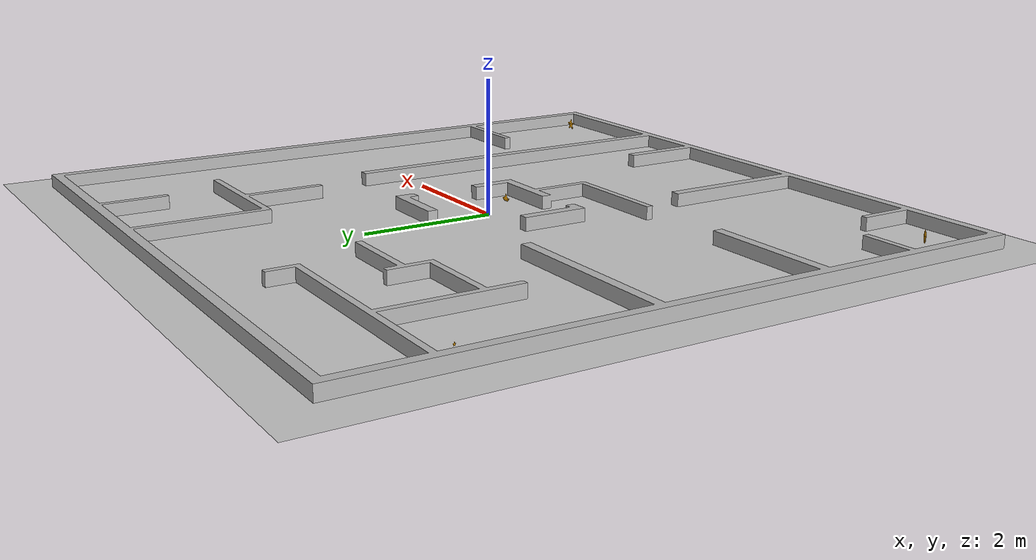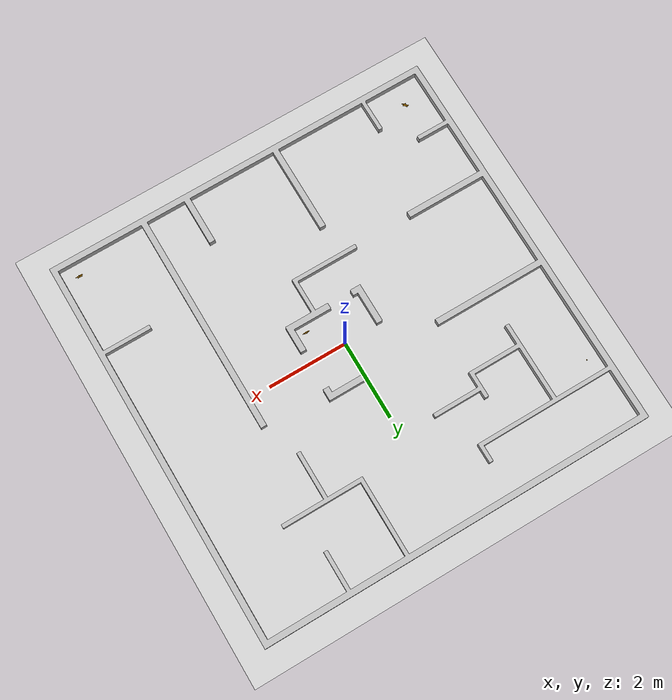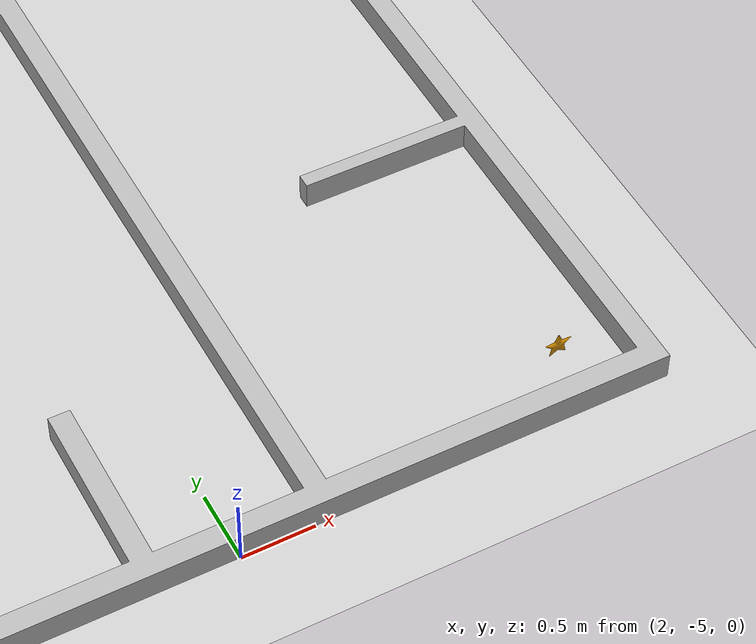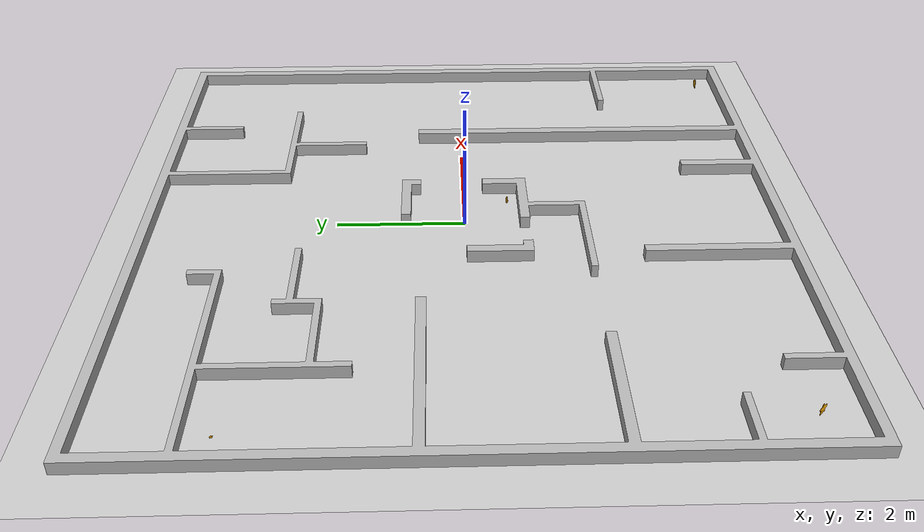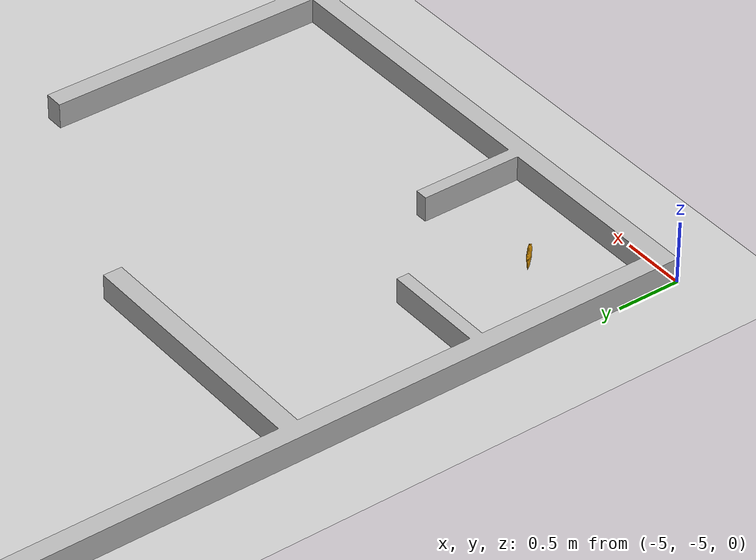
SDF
<sdf version='1.7'>
  <world name='mario_world'>
    <physics name='1ms' type='ignored'>
      <max_step_size>0.001</max_step_size>
      <real_time_factor>1</real_time_factor>
      <real_time_update_rate>1000</real_time_update_rate>
    </physics>
    <plugin name='ignition::gazebo::systems::Physics' filename='ignition-gazebo-physics-system'/>
    <plugin name='ignition::gazebo::systems::UserCommands' filename='ignition-gazebo-user-commands-system'/>
    <plugin name='ignition::gazebo::systems::SceneBroadcaster' filename='ignition-gazebo-scene-broadcaster-system'/>
    <plugin name='ignition::gazebo::systems::Imu' filename='ignition-gazebo-imu-system'/>
    <plugin name='ignition::gazebo::systems::Sensors' filename='ignition-gazebo-sensors-system'>
      <render_engine>ogre2</render_engine>
    </plugin>
    <light name='sun' type='directional'>
      <cast_shadows>1</cast_shadows>
      <pose>0 0 10 0 -0 0</pose>
      <diffuse>0.8 0.8 0.8 1</diffuse>
      <specular>0.2 0.2 0.2 1</specular>
      <attenuation>
        <range>1000</range>
        <constant>0.9</constant>
        <linear>0.01</linear>
        <quadratic>0.001</quadratic>
      </attenuation>
      <direction>-0.5 0.1 -0.9</direction>
      <spot>
        <inner_angle>0</inner_angle>
        <outer_angle>0</outer_angle>
        <falloff>0</falloff>
      </spot>
    </light>
    <gravity>0 0 -9.8</gravity>
    <magnetic_field>6e-06 2.3e-05 -4.2e-05</magnetic_field>
    <atmosphere type='adiabatic'/>
    <scene>
      <ambient>0.4 0.4 0.4 1</ambient>
      <background>0.7 0.7 0.7 1</background>
      <shadows>1</shadows>
    </scene>
    <model name='ground_plane'>
      <static>1</static>
      <link name='link'>
        <collision name='collision'>
          <geometry>
            <plane>
              <normal>0 0 1</normal>
              <size>100 100</size>
            </plane>
          </geometry>
          <surface>
            <friction>
              <ode/>
            </friction>
            <bounce/>
            <contact/>
          </surface>
        </collision>
        <visual name='visual'>
          <geometry>
            <plane>
              <normal>0 0 1</normal>
              <size>100 100</size>
            </plane>
          </geometry>
          <material>
            <ambient>0.8 0.8 0.8 1</ambient>
            <diffuse>0.8 0.8 0.8 1</diffuse>
            <specular>0.8 0.8 0.8 1</specular>
          </material>
        </visual>
      </link>
      <pose>0 0 0 0 -0 0</pose>
    </model>

    <include>
      <uri>model://walls</uri>
      <name>walls</name>
      <pose>0 0 0 0 -0 0</pose>
    </include>

    <include>
      <uri>model://star</uri>
      <name>star</name>
      <pose>-4.25413 -4.31819 0.08 0 0 -0.809054</pose>
    </include>

    <include>
      <uri>model://coin</uri>
      <name>coin</name>
      <pose>4.47294 -4.52824 0.094491 0 -0 0</pose>
    </include>

    <include>
      <uri>model://plumbing</uri>
      <name>plumbing</name>
      <pose>0.628577 -0.688103 -0.00333 0 -0 0</pose>
    </include>

    <include>
      <uri>model://goomba</uri>
      <name>goomba</name>
      <pose>-4.5421 3.17099 0.1 0 0 -1.19068</pose>
    </include>

  </world>
</sdf>

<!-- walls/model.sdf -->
<sdf version="1.5">
  <model name="walls">
    <static>true</static>
    <link name="link">
      <collision name="collision">
        <pose>0 0 0 0 0 0</pose>
        <geometry>
          <mesh>
            <uri>meshes/collision.stl</uri>
          </mesh>
        </geometry>
      </collision>
      <visual name="visual">
        <pose>0 0 0 0 0 0</pose>
        <geometry>
          <mesh>
            <uri>meshes/visual.dae</uri>
          </mesh>
        </geometry>
      </visual>
    </link>
  </model>
</sdf>

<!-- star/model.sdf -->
<sdf version="1.5">
  <model name="star">
    <static>true</static>
    <link name="link">
      <collision name="collision">
        <pose>0 0 0 0 0 0</pose>
        <geometry>
          <mesh>
            <uri>meshes/collision.stl</uri>
          </mesh>
        </geometry>
      </collision>
      <visual name="visual">
        <pose>0 0 0 0 0 0</pose>
        <geometry>
          <mesh>
            <uri>meshes/visual.dae</uri>
          </mesh>
        </geometry>
      </visual>
    </link>
  </model>
</sdf>

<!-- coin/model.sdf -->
<sdf version="1.5">
  <model name="coin">
    <static>true</static>
    <link name="link">
      <collision name="collision">
        <pose>0 0 0 0 0 0</pose>
        <geometry>
          <mesh>
            <uri>meshes/collision.stl</uri>
          </mesh>
        </geometry>
      </collision>
      <visual name="visual">
        <pose>0 0 0 0 0 0</pose>
        <geometry>
          <mesh>
            <uri>meshes/visual.dae</uri>
          </mesh>
        </geometry>
      </visual>
    </link>
  </model>
</sdf>

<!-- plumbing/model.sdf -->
<sdf version="1.5">
  <model name="plumbing">
    <static>true</static>
    <link name="link">
      <collision name="collision">
        <pose>0 0 0 0 0 0</pose>
        <geometry>
          <mesh>
            <uri>meshes/collision.stl</uri>
          </mesh>
        </geometry>
      </collision>
      <visual name="visual">
        <pose>0 0 0 0 0 0</pose>
        <geometry>
          <mesh>
            <uri>meshes/visual.dae</uri>
          </mesh>
        </geometry>
      </visual>
    </link>
  </model>
</sdf>

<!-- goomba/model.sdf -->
<sdf version="1.5">
  <model name="goomba">
    <static>true</static>
    <link name="link">
      <collision name="collision">
        <pose>0 0 0 0 0 0</pose>
        <geometry>
          <mesh>
            <scale>0.3 0.3 0.3</scale>
            <uri>meshes/collision.stl</uri>
          </mesh>
        </geometry>
      </collision>
      <visual name="visual">
        <pose>0 0 0 0 0 0</pose>
        <geometry>
          <mesh>
            <scale>0.3 0.3 0.3</scale>
            <uri>meshes/visual.dae</uri>
          </mesh>
        </geometry>
      </visual>
    </link>
  </model>
</sdf>
